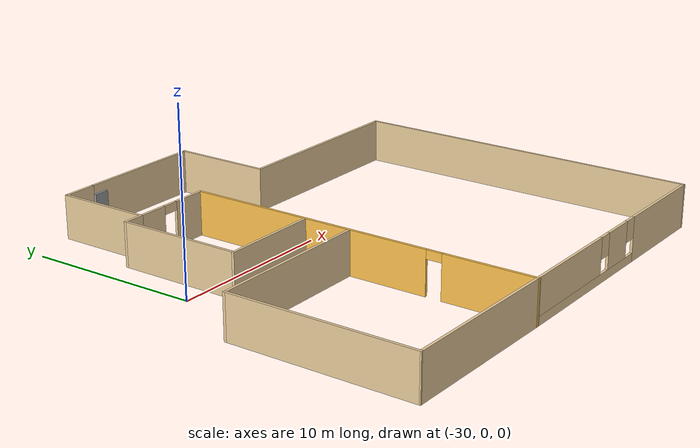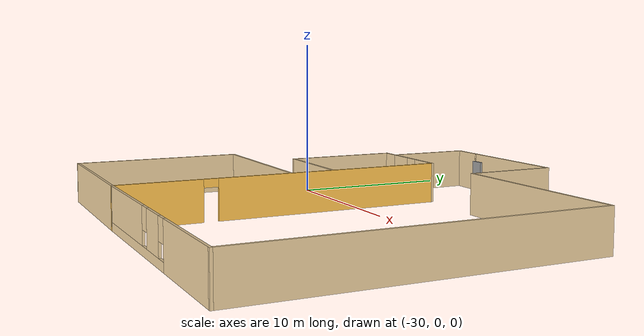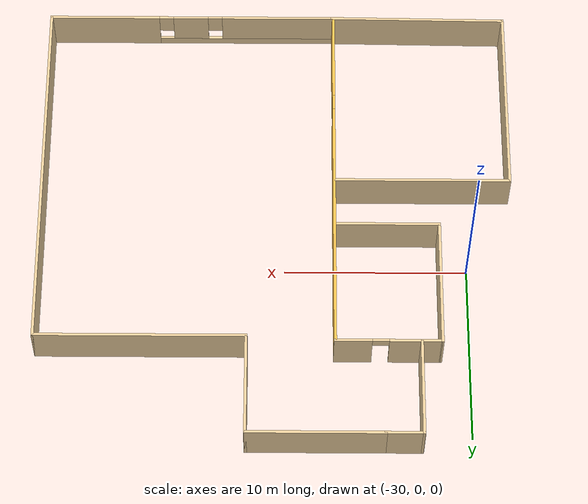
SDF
<?xml version='1.0'?>
<sdf version='1.7'>
  <model name='building'>
    <pose>-16.229 -2.24939 0 0 -0 0</pose>
    <link name='Door_2'>
      <collision name='Door_2_Collision'>
        <geometry>
          <box>
            <size>0.9 0.17 2</size>
          </box>
        </geometry>
        <pose>0 0 1 0 -0 0</pose>
      </collision>
      <visual name='Door_2_Visual'>
        <pose>0 0 1 0 -0 0</pose>
        <geometry>
          <box>
            <size>0.9 0.17 2</size>
          </box>
        </geometry>
        <material>
          <script>
            <uri>file://media/materials/scripts/gazebo.material</uri>
            <name>Gazebo/Grey</name>
          </script>
        </material>
      </visual>
      <pose>-8.76776 12.8275 0 0 -0 0</pose>
    </link>
    <link name='Wall_17'>
      <collision name='Wall_17_Collision'>
        <geometry>
          <box>
            <size>7.49984 0.15 2.5</size>
          </box>
        </geometry>
        <pose>0 0 1.25 0 -0 0</pose>
      </collision>
      <visual name='Wall_17_Visual'>
        <pose>0 0 1.25 0 -0 0</pose>
        <geometry>
          <box>
            <size>7.49984 0.15 2.5</size>
          </box>
        </geometry>
        <material>
          <script>
            <uri>file://media/materials/scripts/gazebo.material</uri>
            <name>Gazebo/Grey</name>
          </script>
          <ambient>0.921569 0.807843 0.615686 1</ambient>
        </material>
        <meta>
          <layer>0</layer>
        </meta>
      </visual>
      <pose>-5.43204 12.9754 0 0 -0 0</pose>
    </link>
    <link name='Wall_18'>
      <collision name='Wall_18_Collision'>
        <geometry>
          <box>
            <size>5.75 0.15 2.5</size>
          </box>
        </geometry>
        <pose>0 0 1.25 0 -0 0</pose>
      </collision>
      <visual name='Wall_18_Visual'>
        <pose>0 0 1.25 0 -0 0</pose>
        <geometry>
          <box>
            <size>5.75 0.15 2.5</size>
          </box>
        </geometry>
        <material>
          <script>
            <uri>file://media/materials/scripts/gazebo.material</uri>
            <name>Gazebo/Grey</name>
          </script>
          <ambient>0.921569 0.807843 0.615686 1</ambient>
        </material>
        <meta>
          <layer>0</layer>
        </meta>
      </visual>
      <pose>-1.75704 10.1754 0 0 -0 -1.5708</pose>
    </link>
    <link name='Wall_19'>
      <collision name='Wall_19_Collision'>
        <geometry>
          <box>
            <size>11.5 0.15 2.5</size>
          </box>
        </geometry>
        <pose>0 0 1.25 0 -0 0</pose>
      </collision>
      <visual name='Wall_19_Visual'>
        <pose>0 0 1.25 0 -0 0</pose>
        <geometry>
          <box>
            <size>11.5 0.15 2.5</size>
          </box>
        </geometry>
        <material>
          <script>
            <uri>file://media/materials/scripts/gazebo.material</uri>
            <name>Gazebo/Grey</name>
          </script>
          <ambient>0.921569 0.807843 0.615686 1</ambient>
        </material>
        <meta>
          <layer>0</layer>
        </meta>
      </visual>
      <pose>3.91796 7.37539 0 0 -0 0</pose>
    </link>
    <link name='Wall_20'>
      <collision name='Wall_20_Collision'>
        <geometry>
          <box>
            <size>20.5 0.15 2.5</size>
          </box>
        </geometry>
        <pose>0 0 1.25 0 -0 0</pose>
      </collision>
      <visual name='Wall_20_Visual'>
        <pose>0 0 1.25 0 -0 0</pose>
        <geometry>
          <box>
            <size>20.5 0.15 2.5</size>
          </box>
        </geometry>
        <material>
          <script>
            <uri>file://media/materials/scripts/gazebo.material</uri>
            <name>Gazebo/Grey</name>
          </script>
          <ambient>0.921569 0.807843 0.615686 1</ambient>
        </material>
        <meta>
          <layer>0</layer>
        </meta>
      </visual>
      <pose>9.59296 -2.79961 0 0 -0 -1.5708</pose>
    </link>
    <link name='Wall_21'>
      <pose>1.54296 -12.9745 0 0 -0 3.14158</pose>
      <visual name='Wall_21_Visual_0'>
        <pose>-5.00538 0 1.25 0 -0 0</pose>
        <geometry>
          <box>
            <size>6.23923 0.15 2.5</size>
          </box>
        </geometry>
        <material>
          <script>
            <uri>file://media/materials/scripts/gazebo.material</uri>
            <name>Gazebo/Grey</name>
          </script>
          <ambient>0.921569 0.807843 0.615686 1</ambient>
        </material>
        <meta>
          <layer>0</layer>
        </meta>
      </visual>
      <collision name='Wall_21_Collision_0'>
        <geometry>
          <box>
            <size>6.23923 0.15 2.5</size>
          </box>
        </geometry>
        <pose>-5.00538 0 1.25 0 -0 0</pose>
      </collision>
      <visual name='Wall_21_Visual_1'>
        <pose>3.11962 0 0.25 0 -0 0</pose>
        <geometry>
          <box>
            <size>10.0108 0.15 0.5</size>
          </box>
        </geometry>
        <material>
          <script>
            <uri>file://media/materials/scripts/gazebo.material</uri>
            <name>Gazebo/Grey</name>
          </script>
          <ambient>0.921569 0.807843 0.615686 1</ambient>
        </material>
        <meta>
          <layer>0</layer>
        </meta>
      </visual>
      <collision name='Wall_21_Collision_1'>
        <geometry>
          <box>
            <size>10.0108 0.15 0.5</size>
          </box>
        </geometry>
        <pose>3.11962 0 0.25 0 -0 0</pose>
      </collision>
      <visual name='Wall_21_Visual_2'>
        <pose>-0.095733 0 1.5 0 -0 0</pose>
        <geometry>
          <box>
            <size>1.98006 0.15 2</size>
          </box>
        </geometry>
        <material>
          <script>
            <uri>file://media/materials/scripts/gazebo.material</uri>
            <name>Gazebo/Grey</name>
          </script>
          <ambient>0.921569 0.807843 0.615686 1</ambient>
        </material>
        <meta>
          <layer>0</layer>
        </meta>
      </visual>
      <collision name='Wall_21_Collision_2'>
        <geometry>
          <box>
            <size>1.98006 0.15 2</size>
          </box>
        </geometry>
        <pose>-0.095733 0 1.5 0 -0 0</pose>
      </collision>
      <visual name='Wall_21_Visual_3'>
        <pose>4.90965 0 1.5 0 -0 0</pose>
        <geometry>
          <box>
            <size>6.4307 0.15 2</size>
          </box>
        </geometry>
        <material>
          <script>
            <uri>file://media/materials/scripts/gazebo.material</uri>
            <name>Gazebo/Grey</name>
          </script>
          <ambient>0.921569 0.807843 0.615686 1</ambient>
        </material>
        <meta>
          <layer>0</layer>
        </meta>
      </visual>
      <collision name='Wall_21_Collision_3'>
        <geometry>
          <box>
            <size>6.4307 0.15 2</size>
          </box>
        </geometry>
        <pose>4.90965 0 1.5 0 -0 0</pose>
      </collision>
      <visual name='Wall_21_Visual_4'>
        <pose>-1.48577 0 1.9 0 -0 0</pose>
        <geometry>
          <box>
            <size>0.8 0.15 1.2</size>
          </box>
        </geometry>
        <material>
          <script>
            <uri>file://media/materials/scripts/gazebo.material</uri>
            <name>Gazebo/Grey</name>
          </script>
          <ambient>0.921569 0.807843 0.615686 1</ambient>
        </material>
        <meta>
          <layer>0</layer>
        </meta>
      </visual>
      <collision name='Wall_21_Collision_4'>
        <geometry>
          <box>
            <size>0.8 0.15 1.2</size>
          </box>
        </geometry>
        <pose>-1.48577 0 1.9 0 -0 0</pose>
      </collision>
      <visual name='Wall_21_Visual_5'>
        <pose>1.2943 0 1.9 0 -0 0</pose>
        <geometry>
          <box>
            <size>0.8 0.15 1.2</size>
          </box>
        </geometry>
        <material>
          <script>
            <uri>file://media/materials/scripts/gazebo.material</uri>
            <name>Gazebo/Grey</name>
          </script>
          <ambient>0.921569 0.807843 0.615686 1</ambient>
        </material>
        <meta>
          <layer>0</layer>
        </meta>
      </visual>
      <collision name='Wall_21_Collision_5'>
        <geometry>
          <box>
            <size>0.8 0.15 1.2</size>
          </box>
        </geometry>
        <pose>1.2943 0 1.9 0 -0 0</pose>
      </collision>
    </link>
    <link name='Wall_22'>
      <pose>-6.50704 -2.67454 0 0 -0 1.5708</pose>
      <visual name='Wall_22_Visual_0'>
        <pose>-7.72976 0 1.25 0 -0 0</pose>
        <geometry>
          <box>
            <size>5.29024 0.15 2.5</size>
          </box>
        </geometry>
        <material>
          <script>
            <uri>file://media/materials/scripts/gazebo.material</uri>
            <name>Gazebo/Grey</name>
          </script>
          <ambient>1 0.764706 0.305882 1</ambient>
        </material>
        <meta>
          <layer>0</layer>
        </meta>
      </visual>
      <collision name='Wall_22_Collision_0'>
        <geometry>
          <box>
            <size>5.29024 0.15 2.5</size>
          </box>
        </geometry>
        <pose>-7.72976 0 1.25 0 -0 0</pose>
      </collision>
      <visual name='Wall_22_Visual_1'>
        <pose>3.09512 0 1.25 0 -0 0</pose>
        <geometry>
          <box>
            <size>14.5595 0.15 2.5</size>
          </box>
        </geometry>
        <material>
          <script>
            <uri>file://media/materials/scripts/gazebo.material</uri>
            <name>Gazebo/Grey</name>
          </script>
          <ambient>1 0.764706 0.305882 1</ambient>
        </material>
        <meta>
          <layer>0</layer>
        </meta>
      </visual>
      <collision name='Wall_22_Collision_1'>
        <geometry>
          <box>
            <size>14.5595 0.15 2.5</size>
          </box>
        </geometry>
        <pose>3.09512 0 1.25 0 -0 0</pose>
      </collision>
      <visual name='Wall_22_Visual_2'>
        <pose>-4.63464 0 2.25 0 -0 0</pose>
        <geometry>
          <box>
            <size>0.9 0.15 0.5</size>
          </box>
        </geometry>
        <material>
          <script>
            <uri>file://media/materials/scripts/gazebo.material</uri>
            <name>Gazebo/Grey</name>
          </script>
          <ambient>1 0.764706 0.305882 1</ambient>
        </material>
        <meta>
          <layer>0</layer>
        </meta>
      </visual>
      <collision name='Wall_22_Collision_2'>
        <geometry>
          <box>
            <size>0.9 0.15 0.5</size>
          </box>
        </geometry>
        <pose>-4.63464 0 2.25 0 -0 0</pose>
      </collision>
    </link>
    <link name='Wall_23'>
      <pose>-8.80704 7.62539 0 0 -0 3.14159</pose>
      <visual name='Wall_23_Visual_0'>
        <pose>-1.357 0 1.25 0 -0 0</pose>
        <geometry>
          <box>
            <size>2.03599 0.15 2.5</size>
          </box>
        </geometry>
        <material>
          <script>
            <uri>file://media/materials/scripts/gazebo.material</uri>
            <name>Gazebo/Grey</name>
          </script>
          <ambient>0.921569 0.807843 0.615686 1</ambient>
        </material>
        <meta>
          <layer>0</layer>
        </meta>
      </visual>
      <collision name='Wall_23_Collision_0'>
        <geometry>
          <box>
            <size>2.03599 0.15 2.5</size>
          </box>
        </geometry>
        <pose>-1.357 0 1.25 0 -0 0</pose>
      </collision>
      <visual name='Wall_23_Visual_1'>
        <pose>1.468 0 1.25 0 -0 0</pose>
        <geometry>
          <box>
            <size>1.81401 0.15 2.5</size>
          </box>
        </geometry>
        <material>
          <script>
            <uri>file://media/materials/scripts/gazebo.material</uri>
            <name>Gazebo/Grey</name>
          </script>
          <ambient>0.921569 0.807843 0.615686 1</ambient>
        </material>
        <meta>
          <layer>0</layer>
        </meta>
      </visual>
      <collision name='Wall_23_Collision_1'>
        <geometry>
          <box>
            <size>1.81401 0.15 2.5</size>
          </box>
        </geometry>
        <pose>1.468 0 1.25 0 -0 0</pose>
      </collision>
      <visual name='Wall_23_Visual_2'>
        <pose>0.110992 0 2.25 0 -0 0</pose>
        <geometry>
          <box>
            <size>0.9 0.15 0.5</size>
          </box>
        </geometry>
        <material>
          <script>
            <uri>file://media/materials/scripts/gazebo.material</uri>
            <name>Gazebo/Grey</name>
          </script>
          <ambient>0.921569 0.807843 0.615686 1</ambient>
        </material>
        <meta>
          <layer>0</layer>
        </meta>
      </visual>
      <collision name='Wall_23_Collision_2'>
        <geometry>
          <box>
            <size>0.9 0.15 0.5</size>
          </box>
        </geometry>
        <pose>0.110992 0 2.25 0 -0 0</pose>
      </collision>
    </link>
    <link name='Wall_24'>
      <collision name='Wall_24_Collision'>
        <geometry>
          <box>
            <size>5.5 0.15 2.5</size>
          </box>
        </geometry>
        <pose>0 0 1.25 0 -0 0</pose>
      </collision>
      <visual name='Wall_24_Visual'>
        <pose>0 0 1.25 0 -0 0</pose>
        <geometry>
          <box>
            <size>5.5 0.15 2.5</size>
          </box>
        </geometry>
        <material>
          <script>
            <uri>file://media/materials/scripts/gazebo.material</uri>
            <name>Gazebo/Grey</name>
          </script>
          <ambient>0.921569 0.807843 0.615686 1</ambient>
        </material>
        <meta>
          <layer>0</layer>
        </meta>
      </visual>
      <pose>-11.107 10.3004 0 0 -0 1.5708</pose>
    </link>
    <link name='Wall_25'>
      <collision name='Wall_25_Collision'>
        <geometry>
          <box>
            <size>2.14984 0.15 2.5</size>
          </box>
        </geometry>
        <pose>0 0 1.25 0 -0 0</pose>
      </collision>
      <visual name='Wall_25_Visual'>
        <pose>0 0 1.25 0 -0 0</pose>
        <geometry>
          <box>
            <size>2.14984 0.15 2.5</size>
          </box>
        </geometry>
        <material>
          <script>
            <uri>file://media/materials/scripts/gazebo.material</uri>
            <name>Gazebo/Grey</name>
          </script>
          <ambient>0.921569 0.807843 0.615686 1</ambient>
        </material>
        <meta>
          <layer>0</layer>
        </meta>
      </visual>
      <pose>-10.107 12.9754 0 0 -0 0</pose>
    </link>
    <link name='Wall_27'>
      <collision name='Wall_27_Collision'>
        <geometry>
          <box>
            <size>9.75 0.15 2.5</size>
          </box>
        </geometry>
        <pose>0 0 1.25 0 -0 0</pose>
      </collision>
      <visual name='Wall_27_Visual'>
        <pose>0 0 1.25 0 -0 0</pose>
        <geometry>
          <box>
            <size>9.75 0.15 2.5</size>
          </box>
        </geometry>
        <material>
          <script>
            <uri>file://media/materials/scripts/gazebo.material</uri>
            <name>Gazebo/Grey</name>
          </script>
          <ambient>0.921569 0.807843 0.615686 1</ambient>
        </material>
        <meta>
          <layer>0</layer>
        </meta>
      </visual>
      <pose>-11.353 -2.25461 0 0 -0 3.14159</pose>
    </link>
    <link name='Wall_28'>
      <collision name='Wall_28_Collision'>
        <geometry>
          <box>
            <size>10.75 0.15 2.5</size>
          </box>
        </geometry>
        <pose>0 0 1.25 0 -0 0</pose>
      </collision>
      <visual name='Wall_28_Visual'>
        <pose>0 0 1.25 0 -0 0</pose>
        <geometry>
          <box>
            <size>10.75 0.15 2.5</size>
          </box>
        </geometry>
        <material>
          <script>
            <uri>file://media/materials/scripts/gazebo.material</uri>
            <name>Gazebo/Grey</name>
          </script>
          <ambient>0.921569 0.807843 0.615686 1</ambient>
        </material>
        <meta>
          <layer>0</layer>
        </meta>
      </visual>
      <pose>-16.153 -7.55461 0 0 -0 -1.5708</pose>
    </link>
    <link name='Wall_29'>
      <collision name='Wall_29_Collision'>
        <geometry>
          <box>
            <size>9.87188 0.15 2.5</size>
          </box>
        </geometry>
        <pose>0 0 1.25 0 -0 0</pose>
      </collision>
      <visual name='Wall_29_Visual'>
        <pose>0 0 1.25 0 -0 0</pose>
        <geometry>
          <box>
            <size>9.87188 0.15 2.5</size>
          </box>
        </geometry>
        <material>
          <script>
            <uri>file://media/materials/scripts/gazebo.material</uri>
            <name>Gazebo/Grey</name>
          </script>
          <ambient>0.921569 0.807843 0.615686 1</ambient>
        </material>
        <meta>
          <layer>0</layer>
        </meta>
      </visual>
      <pose>-11.2925 -12.9145 0 0 -0 -0.01233</pose>
    </link>
    <link name='Wall_31'>
      <collision name='Wall_31_Collision'>
        <geometry>
          <box>
            <size>1.25 0.15 2.5</size>
          </box>
        </geometry>
        <pose>0 0 1.25 0 -0 0</pose>
      </collision>
      <visual name='Wall_31_Visual'>
        <pose>0 0 1.25 0 -0 0</pose>
        <geometry>
          <box>
            <size>1.25 0.15 2.5</size>
          </box>
        </geometry>
        <material>
          <script>
            <uri>file://media/materials/scripts/gazebo.material</uri>
            <name>Gazebo/Grey</name>
          </script>
          <ambient>0.921569 0.807843 0.615686 1</ambient>
        </material>
        <meta>
          <layer>0</layer>
        </meta>
      </visual>
      <pose>-11.657 7.62539 0 0 -0 3.14159</pose>
    </link>
    <link name='Wall_32'>
      <collision name='Wall_32_Collision'>
        <geometry>
          <box>
            <size>7.25 0.15 2.5</size>
          </box>
        </geometry>
        <pose>0 0 1.25 0 -0 0</pose>
      </collision>
      <visual name='Wall_32_Visual'>
        <pose>0 0 1.25 0 -0 0</pose>
        <geometry>
          <box>
            <size>7.25 0.15 2.5</size>
          </box>
        </geometry>
        <material>
          <script>
            <uri>file://media/materials/scripts/gazebo.material</uri>
            <name>Gazebo/Grey</name>
          </script>
          <ambient>0.921569 0.807843 0.615686 1</ambient>
        </material>
        <meta>
          <layer>0</layer>
        </meta>
      </visual>
      <pose>-12.207 4.07539 0 0 -0 -1.5708</pose>
    </link>
    <link name='Wall_33'>
      <collision name='Wall_33_Collision'>
        <geometry>
          <box>
            <size>5.75 0.15 2.5</size>
          </box>
        </geometry>
        <pose>0 0 1.25 0 -0 0</pose>
      </collision>
      <visual name='Wall_33_Visual'>
        <pose>0 0 1.25 0 -0 0</pose>
        <geometry>
          <box>
            <size>5.75 0.15 2.5</size>
          </box>
        </geometry>
        <material>
          <script>
            <uri>file://media/materials/scripts/gazebo.material</uri>
            <name>Gazebo/Grey</name>
          </script>
          <ambient>0.921569 0.807843 0.615686 1</ambient>
        </material>
        <meta>
          <layer>0</layer>
        </meta>
      </visual>
      <pose>-9.40704 0.525391 0 0 -0 0</pose>
    </link>
    <static>1</static>
  </model>
</sdf>
